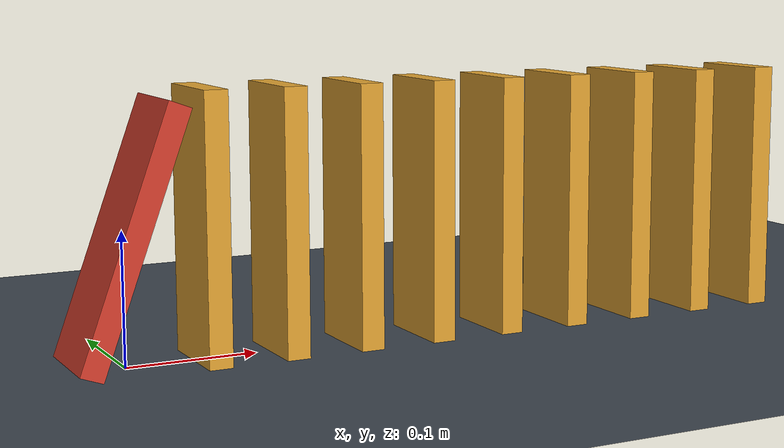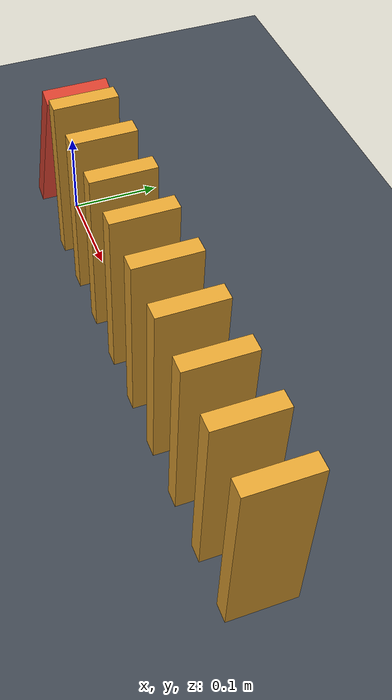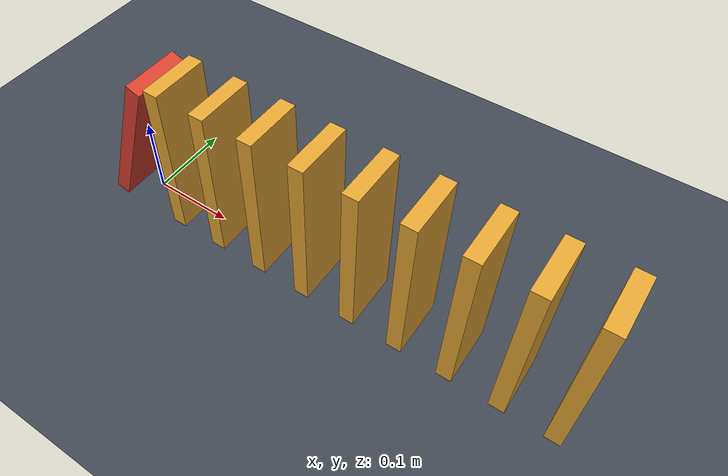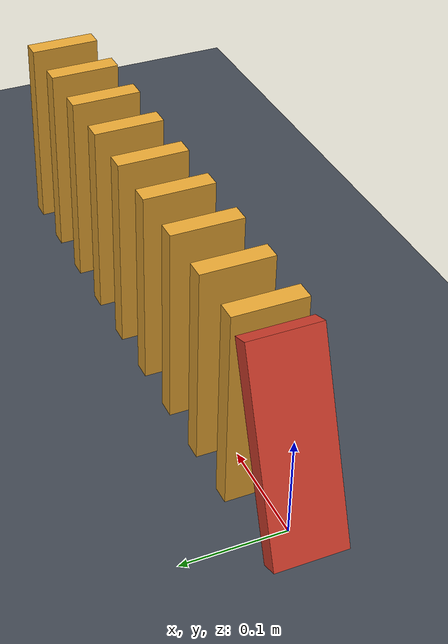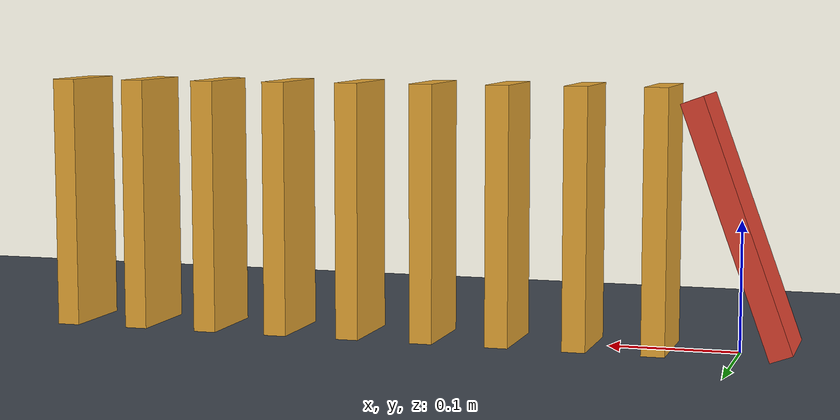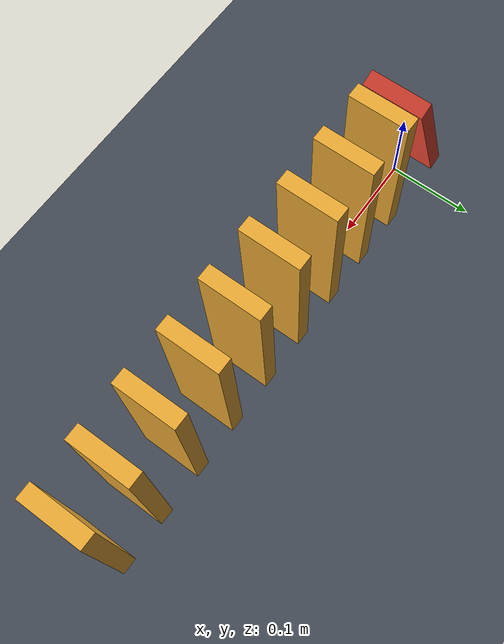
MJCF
<mujoco model="ten_domino_cascade">
  <compiler angle="degree" autolimits="true"/>
  <option timestep="0.002" gravity="0 0 -9.81" integrator="implicitfast" solver="Newton" iterations="100" tolerance="1e-9"/>

  <worldbody>
    <light name="main_light" pos="0.25 -0.4 1.5" dir="0 0.2 -1" diffuse="0.8 0.8 0.8"/>
    <geom name="floor" type="plane" pos="0 0 0" size="2 2 0.1" friction="0.8 0.005 0.0001" condim="3" solref="0.01 1" solimp="0.95 0.99 0.001" rgba="0.25 0.28 0.32 1"/>

    <!-- The first domino leans 20 degrees toward +x, with its bottom edge on the floor. -->
    <body name="domino1" pos="0 0 0.097047444" quat="0.984807753 0 0.173648178 0">
      <freejoint name="domino1_free"/>
      <geom name="domino1_geom" type="box" size="0.009 0.035 0.1" density="700" friction="0.8 0.005 0.0001" condim="3" solref="0.01 1" solimp="0.95 0.99 0.001" rgba="0.85 0.25 0.18 1"/>
    </body>

    <body name="domino2" pos="0.06 0 0.1">
      <freejoint name="domino2_free"/>
      <geom name="domino2_geom" type="box" size="0.009 0.035 0.1" density="700" friction="0.8 0.005 0.0001" condim="3" solref="0.01 1" solimp="0.95 0.99 0.001" rgba="0.9 0.65 0.2 1"/>
    </body>

    <body name="domino3" pos="0.12 0 0.1">
      <freejoint name="domino3_free"/>
      <geom name="domino3_geom" type="box" size="0.009 0.035 0.1" density="700" friction="0.8 0.005 0.0001" condim="3" solref="0.01 1" solimp="0.95 0.99 0.001" rgba="0.9 0.65 0.2 1"/>
    </body>

    <body name="domino4" pos="0.18 0 0.1">
      <freejoint name="domino4_free"/>
      <geom name="domino4_geom" type="box" size="0.009 0.035 0.1" density="700" friction="0.8 0.005 0.0001" condim="3" solref="0.01 1" solimp="0.95 0.99 0.001" rgba="0.9 0.65 0.2 1"/>
    </body>

    <body name="domino5" pos="0.24 0 0.1">
      <freejoint name="domino5_free"/>
      <geom name="domino5_geom" type="box" size="0.009 0.035 0.1" density="700" friction="0.8 0.005 0.0001" condim="3" solref="0.01 1" solimp="0.95 0.99 0.001" rgba="0.9 0.65 0.2 1"/>
    </body>

    <body name="domino6" pos="0.30 0 0.1">
      <freejoint name="domino6_free"/>
      <geom name="domino6_geom" type="box" size="0.009 0.035 0.1" density="700" friction="0.8 0.005 0.0001" condim="3" solref="0.01 1" solimp="0.95 0.99 0.001" rgba="0.9 0.65 0.2 1"/>
    </body>

    <body name="domino7" pos="0.36 0 0.1">
      <freejoint name="domino7_free"/>
      <geom name="domino7_geom" type="box" size="0.009 0.035 0.1" density="700" friction="0.8 0.005 0.0001" condim="3" solref="0.01 1" solimp="0.95 0.99 0.001" rgba="0.9 0.65 0.2 1"/>
    </body>

    <body name="domino8" pos="0.42 0 0.1">
      <freejoint name="domino8_free"/>
      <geom name="domino8_geom" type="box" size="0.009 0.035 0.1" density="700" friction="0.8 0.005 0.0001" condim="3" solref="0.01 1" solimp="0.95 0.99 0.001" rgba="0.9 0.65 0.2 1"/>
    </body>

    <body name="domino9" pos="0.48 0 0.1">
      <freejoint name="domino9_free"/>
      <geom name="domino9_geom" type="box" size="0.009 0.035 0.1" density="700" friction="0.8 0.005 0.0001" condim="3" solref="0.01 1" solimp="0.95 0.99 0.001" rgba="0.9 0.65 0.2 1"/>
    </body>

    <body name="domino10" pos="0.54 0 0.1">
      <freejoint name="domino10_free"/>
      <geom name="domino10_geom" type="box" size="0.009 0.035 0.1" density="700" friction="0.8 0.005 0.0001" condim="3" solref="0.01 1" solimp="0.95 0.99 0.001" rgba="0.9 0.65 0.2 1"/>
    </body>
  </worldbody>

  <keyframe>
    <key name="start"/>
  </keyframe>
</mujoco>
